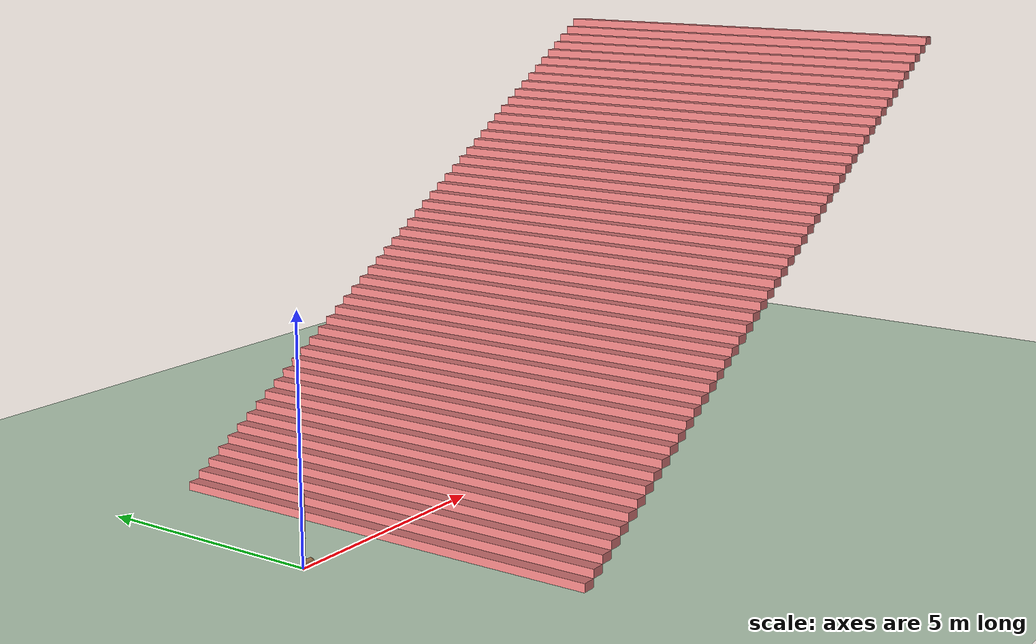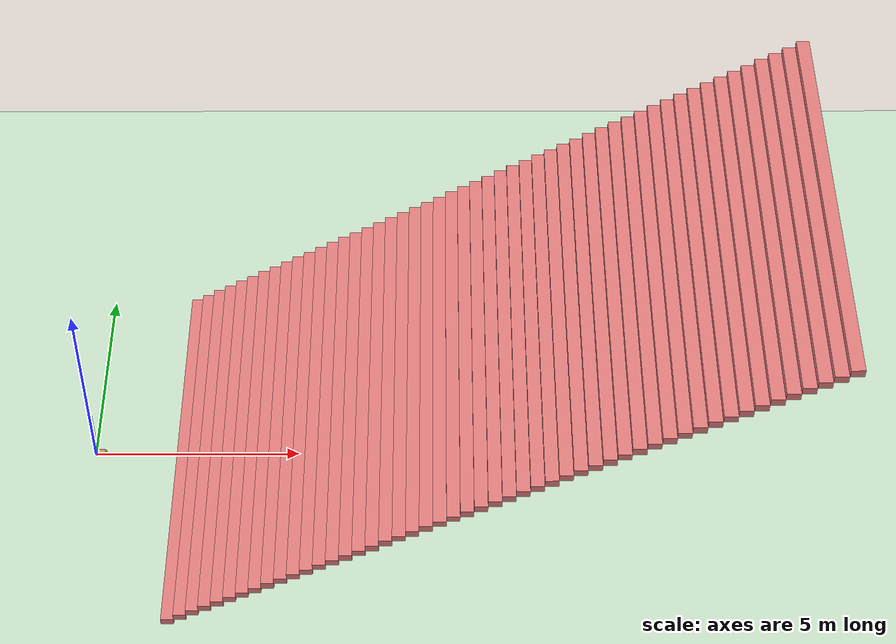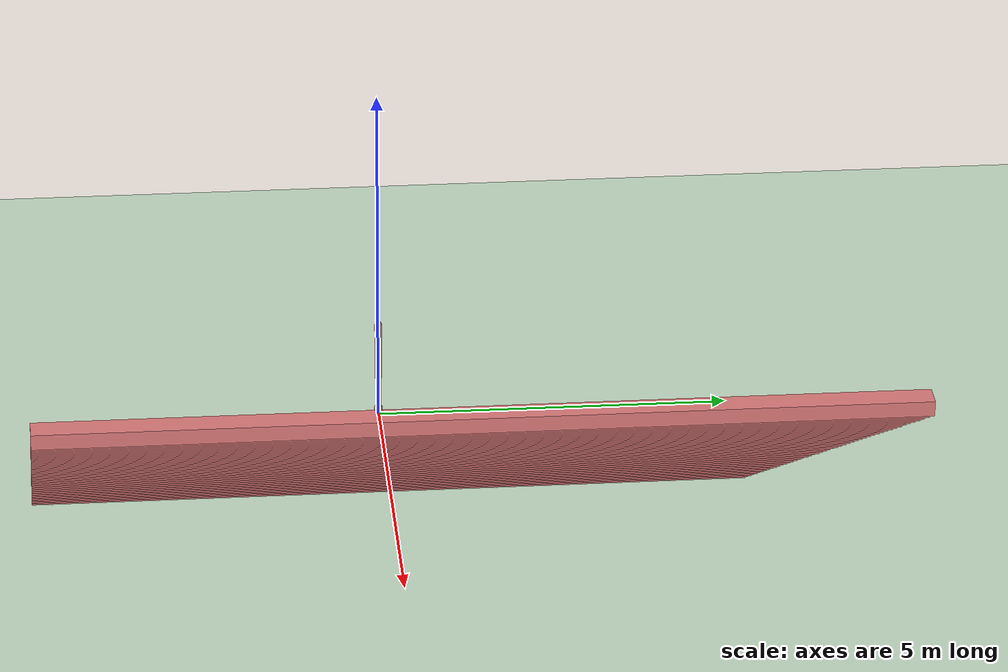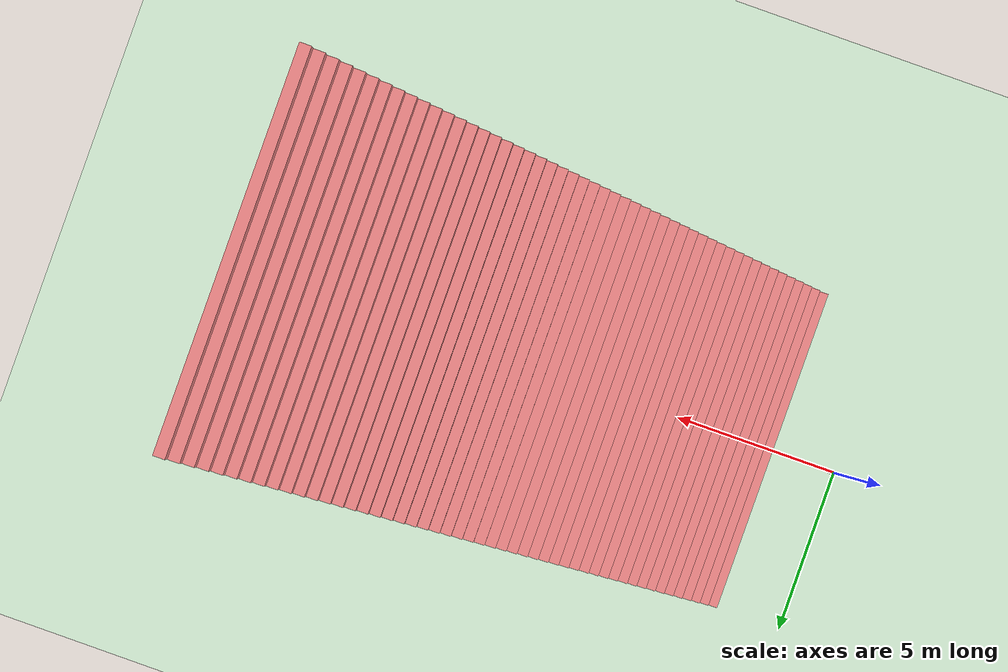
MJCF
<!--
Walker2D model for `Walker2d-v5`, based on openai/gym/Walker2d
modified by @kallinteris-Andreas
  - To not require `coordinate="global"`
  - Set feet friction to 1.9
-->
<mujoco model="walker2d">
  <compiler angle="degree" inertiafromgeom="true"/>
  <default>
    <joint armature="0.01" damping=".1" limited="true"/>
    <geom conaffinity="0" condim="3" contype="1" density="1000" friction=".7 .1 .1" rgba="0.8 0.6 .4 1"/>
  </default>
  <option integrator="RK4" timestep="0.002"/>
  <worldbody>
    <light cutoff="100" diffuse="1 1 1" dir="-0 0 -1.3" directional="true" exponent="1" pos="0 0 1.3" specular=".1 .1 .1"/>
    <geom conaffinity="1" condim="3" name="floor" pos="0 0 0" rgba="0.8 0.9 0.8 1" size="40 40 40" type="plane" material="MatPlane"/>
    <!-- 계단 추가 높이0.18m, 깊이0.3m, 갯수 50개-->
    <geom conaffinity="1" condim="3" name="stair_1" pos="2.15 0 0.09" size="0.15 5.0 0.09" type="box" rgba="0.9 0.5 0.5 1"/>
    <geom conaffinity="1" condim="3" name="stair_2" pos="2.45 0 0.27" size="0.15 5.0 0.09" type="box" rgba="0.9 0.5 0.5 1"/>
    <geom conaffinity="1" condim="3" name="stair_3" pos="2.75 0 0.45" size="0.15 5.0 0.09" type="box" rgba="0.9 0.5 0.5 1"/>
    <geom conaffinity="1" condim="3" name="stair_4" pos="3.05 0 0.63" size="0.15 5.0 0.09" type="box" rgba="0.9 0.5 0.5 1"/>
    <geom conaffinity="1" condim="3" name="stair_5" pos="3.35 0 0.81" size="0.15 5.0 0.09" type="box" rgba="0.9 0.5 0.5 1"/>
    <geom conaffinity="1" condim="3" name="stair_6" pos="3.65 0 0.99" size="0.15 5.0 0.09" type="box" rgba="0.9 0.5 0.5 1"/>
    <geom conaffinity="1" condim="3" name="stair_7" pos="3.95 0 1.17" size="0.15 5.0 0.09" type="box" rgba="0.9 0.5 0.5 1"/>
    <geom conaffinity="1" condim="3" name="stair_8" pos="4.25 0 1.35" size="0.15 5.0 0.09" type="box" rgba="0.9 0.5 0.5 1"/>
    <geom conaffinity="1" condim="3" name="stair_9" pos="4.55 0 1.53" size="0.15 5.0 0.09" type="box" rgba="0.9 0.5 0.5 1"/>
    <geom conaffinity="1" condim="3" name="stair_10" pos="4.85 0 1.71" size="0.15 5.0 0.09" type="box" rgba="0.9 0.5 0.5 1"/>
    <geom conaffinity="1" condim="3" name="stair_11" pos="5.15 0 1.89" size="0.15 5.0 0.09" type="box" rgba="0.9 0.5 0.5 1"/>
    <geom conaffinity="1" condim="3" name="stair_12" pos="5.45 0 2.07" size="0.15 5.0 0.09" type="box" rgba="0.9 0.5 0.5 1"/>
    <geom conaffinity="1" condim="3" name="stair_13" pos="5.75 0 2.25" size="0.15 5.0 0.09" type="box" rgba="0.9 0.5 0.5 1"/>
    <geom conaffinity="1" condim="3" name="stair_14" pos="6.05 0 2.43" size="0.15 5.0 0.09" type="box" rgba="0.9 0.5 0.5 1"/>
    <geom conaffinity="1" condim="3" name="stair_15" pos="6.35 0 2.61" size="0.15 5.0 0.09" type="box" rgba="0.9 0.5 0.5 1"/>
    <geom conaffinity="1" condim="3" name="stair_16" pos="6.65 0 2.79" size="0.15 5.0 0.09" type="box" rgba="0.9 0.5 0.5 1"/>
    <geom conaffinity="1" condim="3" name="stair_17" pos="6.95 0 2.97" size="0.15 5.0 0.09" type="box" rgba="0.9 0.5 0.5 1"/>
    <geom conaffinity="1" condim="3" name="stair_18" pos="7.25 0 3.15" size="0.15 5.0 0.09" type="box" rgba="0.9 0.5 0.5 1"/>
    <geom conaffinity="1" condim="3" name="stair_19" pos="7.55 0 3.33" size="0.15 5.0 0.09" type="box" rgba="0.9 0.5 0.5 1"/>
    <geom conaffinity="1" condim="3" name="stair_20" pos="7.85 0 3.51" size="0.15 5.0 0.09" type="box" rgba="0.9 0.5 0.5 1"/>
    <geom conaffinity="1" condim="3" name="stair_21" pos="8.15 0 3.69" size="0.15 5.0 0.09" type="box" rgba="0.9 0.5 0.5 1"/>
    <geom conaffinity="1" condim="3" name="stair_22" pos="8.45 0 3.87" size="0.15 5.0 0.09" type="box" rgba="0.9 0.5 0.5 1"/>
    <geom conaffinity="1" condim="3" name="stair_23" pos="8.75 0 4.05" size="0.15 5.0 0.09" type="box" rgba="0.9 0.5 0.5 1"/>
    <geom conaffinity="1" condim="3" name="stair_24" pos="9.05 0 4.23" size="0.15 5.0 0.09" type="box" rgba="0.9 0.5 0.5 1"/>
    <geom conaffinity="1" condim="3" name="stair_25" pos="9.35 0 4.41" size="0.15 5.0 0.09" type="box" rgba="0.9 0.5 0.5 1"/>
    <geom conaffinity="1" condim="3" name="stair_26" pos="9.65 0 4.59" size="0.15 5.0 0.09" type="box" rgba="0.9 0.5 0.5 1"/>
    <geom conaffinity="1" condim="3" name="stair_27" pos="9.95 0 4.77" size="0.15 5.0 0.09" type="box" rgba="0.9 0.5 0.5 1"/>
    <geom conaffinity="1" condim="3" name="stair_28" pos="10.25 0 4.95" size="0.15 5.0 0.09" type="box" rgba="0.9 0.5 0.5 1"/>
    <geom conaffinity="1" condim="3" name="stair_29" pos="10.55 0 5.13" size="0.15 5.0 0.09" type="box" rgba="0.9 0.5 0.5 1"/>
    <geom conaffinity="1" condim="3" name="stair_30" pos="10.85 0 5.31" size="0.15 5.0 0.09" type="box" rgba="0.9 0.5 0.5 1"/>
    <geom conaffinity="1" condim="3" name="stair_31" pos="11.15 0 5.49" size="0.15 5.0 0.09" type="box" rgba="0.9 0.5 0.5 1"/>
    <geom conaffinity="1" condim="3" name="stair_32" pos="11.45 0 5.67" size="0.15 5.0 0.09" type="box" rgba="0.9 0.5 0.5 1"/>
    <geom conaffinity="1" condim="3" name="stair_33" pos="11.75 0 5.85" size="0.15 5.0 0.09" type="box" rgba="0.9 0.5 0.5 1"/>
    <geom conaffinity="1" condim="3" name="stair_34" pos="12.05 0 6.03" size="0.15 5.0 0.09" type="box" rgba="0.9 0.5 0.5 1"/>
    <geom conaffinity="1" condim="3" name="stair_35" pos="12.35 0 6.21" size="0.15 5.0 0.09" type="box" rgba="0.9 0.5 0.5 1"/>
    <geom conaffinity="1" condim="3" name="stair_36" pos="12.65 0 6.39" size="0.15 5.0 0.09" type="box" rgba="0.9 0.5 0.5 1"/>
    <geom conaffinity="1" condim="3" name="stair_37" pos="12.95 0 6.57" size="0.15 5.0 0.09" type="box" rgba="0.9 0.5 0.5 1"/>
    <geom conaffinity="1" condim="3" name="stair_38" pos="13.25 0 6.75" size="0.15 5.0 0.09" type="box" rgba="0.9 0.5 0.5 1"/>
    <geom conaffinity="1" condim="3" name="stair_39" pos="13.55 0 6.93" size="0.15 5.0 0.09" type="box" rgba="0.9 0.5 0.5 1"/>
    <geom conaffinity="1" condim="3" name="stair_40" pos="13.85 0 7.11" size="0.15 5.0 0.09" type="box" rgba="0.9 0.5 0.5 1"/>
    <geom conaffinity="1" condim="3" name="stair_41" pos="14.15 0 7.29" size="0.15 5.0 0.09" type="box" rgba="0.9 0.5 0.5 1"/>
    <geom conaffinity="1" condim="3" name="stair_42" pos="14.45 0 7.47" size="0.15 5.0 0.09" type="box" rgba="0.9 0.5 0.5 1"/>
    <geom conaffinity="1" condim="3" name="stair_43" pos="14.75 0 7.65" size="0.15 5.0 0.09" type="box" rgba="0.9 0.5 0.5 1"/>
    <geom conaffinity="1" condim="3" name="stair_44" pos="15.05 0 7.83" size="0.15 5.0 0.09" type="box" rgba="0.9 0.5 0.5 1"/>
    <geom conaffinity="1" condim="3" name="stair_45" pos="15.35 0 8.01" size="0.15 5.0 0.09" type="box" rgba="0.9 0.5 0.5 1"/>
    <geom conaffinity="1" condim="3" name="stair_46" pos="15.65 0 8.19" size="0.15 5.0 0.09" type="box" rgba="0.9 0.5 0.5 1"/>
    <geom conaffinity="1" condim="3" name="stair_47" pos="15.95 0 8.37" size="0.15 5.0 0.09" type="box" rgba="0.9 0.5 0.5 1"/>
    <geom conaffinity="1" condim="3" name="stair_48" pos="16.25 0 8.55" size="0.15 5.0 0.09" type="box" rgba="0.9 0.5 0.5 1"/>
    <geom conaffinity="1" condim="3" name="stair_49" pos="16.55 0 8.73" size="0.15 5.0 0.09" type="box" rgba="0.9 0.5 0.5 1"/>
    <geom conaffinity="1" condim="3" name="stair_50" pos="16.85 0 8.91" size="0.15 5.0 0.09" type="box" rgba="0.9 0.5 0.5 1"/>

    <body name="torso" pos="0 0 1.25">
      <camera name="track" mode="trackcom" pos="0 -3 -0.25" xyaxes="1 0 0 0 0 1"/>
      <joint armature="0" axis="1 0 0" damping="0" limited="false" name="rootx" pos="0 0 -1.25" stiffness="0" type="slide"/>
      <joint armature="0" axis="0 0 1" damping="0" limited="false" name="rootz" pos="0 0 -1.25" ref="1.25" stiffness="0" type="slide"/>
      <joint armature="0" axis="0 1 0" damping="0" limited="false" name="rooty" pos="0 0 0" stiffness="0" type="hinge"/>
      <geom friction="0.9" name="torso_geom" size="0.050000000000000003 0.19999999999999996" type="capsule"/>
      <body name="thigh" pos="0 0 -0.19999999999999996">
        <joint axis="0 -1 0" name="thigh_joint" pos="0 0 0" range="-150 0" type="hinge"/>
        <geom friction="0.9" pos="0 0 -0.22500000000000009" name="thigh_geom" size="0.050000000000000003 0.22500000000000003" type="capsule"/>
        <body name="leg" pos="0 0 -0.70000000000000007">
          <joint axis="0 -1 0" name="leg_joint" pos="0 0 0.25" range="-150 0" type="hinge"/>
          <geom friction="0.9" name="leg_geom" size="0.040000000000000001 0.25" type="capsule"/>
          <body name="foot" pos="0.20000000000000001 0 -0.34999999999999998">
            <joint axis="0 -1 0" name="foot_joint" pos="-0.20000000000000001 0 0.10000000000000001" range="-45 45" type="hinge"/>
            <geom friction="1.9" pos="-0.10000000000000001 0 0.10000000000000001" quat="0.70710678118654757 0 -0.70710678118654746 0" name="foot_geom" size="0.059999999999999998 0.10000000000000001" type="capsule"/>
          </body>
        </body>
      </body>
      <!-- copied and then replace thigh->thigh_left, leg->leg_left, foot->foot_right -->
      <body name="thigh_left" pos="0 0 -0.19999999999999996">
        <joint axis="0 -1 0" name="thigh_left_joint" pos="0 0 0" range="-150 0" type="hinge"/>
        <geom friction="0.9" name="thigh_left_geom" rgba=".7 .3 .6 1" size="0.050000000000000003 0.22500000000000003" pos="0 0 -0.22500000000000009" type="capsule"/>
        <body name="leg_left" pos="0 0 -0.70000000000000007">
          <joint axis="0 -1 0" name="leg_left_joint" pos="0 0 0.25" range="-150 0" type="hinge"/>
          <geom friction="0.9" name="leg_left_geom" rgba=".7 .3 .6 1" size="0.040000000000000001 0.25" type="capsule"/>
          <body name="foot_left" pos="0.20000000000000001 0 -0.34999999999999998">
            <joint axis="0 -1 0" name="foot_left_joint" pos="-0.20000000000000001 0 0.10000000000000001" range="-45 45" type="hinge"/>
            <geom friction="1.9" name="foot_left_geom" rgba=".7 .3 .6 1" size="0.059999999999999998 0.10000000000000001" pos="-0.10000000000000001 0 0.10000000000000001" type="capsule" quat="0.70710678118654757 0 -0.70710678118654746 0"/>
          </body>
        </body>
      </body>
    </body>
  </worldbody>
  <actuator>
    <motor ctrllimited="true" ctrlrange="-1.0 1.0" gear="100" joint="thigh_joint"/>
    <motor ctrllimited="true" ctrlrange="-1.0 1.0" gear="100" joint="leg_joint"/>
    <motor ctrllimited="true" ctrlrange="-1.0 1.0" gear="100" joint="foot_joint"/>
    <motor ctrllimited="true" ctrlrange="-1.0 1.0" gear="100" joint="thigh_left_joint"/>
    <motor ctrllimited="true" ctrlrange="-1.0 1.0" gear="100" joint="leg_left_joint"/>
    <motor ctrllimited="true" ctrlrange="-1.0 1.0" gear="100" joint="foot_left_joint"/>
  </actuator>
    <asset>
        <texture type="skybox" builtin="gradient" rgb1=".4 .5 .6" rgb2="0 0 0"
            width="100" height="100"/>
        <texture builtin="flat" height="1278" mark="cross" markrgb="1 1 1" name="texgeom" random="0.01" rgb1="0.8 0.6 0.4" rgb2="0.8 0.6 0.4" type="cube" width="127"/>
        <texture builtin="checker" height="100" name="texplane" rgb1="0 0 0" rgb2="0.8 0.8 0.8" type="2d" width="100"/>
        <material name="MatPlane" reflectance="0.5" shininess="1" specular="1" texrepeat="60 60" texture="texplane"/>
        <material name="geom" texture="texgeom" texuniform="true"/>
    </asset>
</mujoco>
